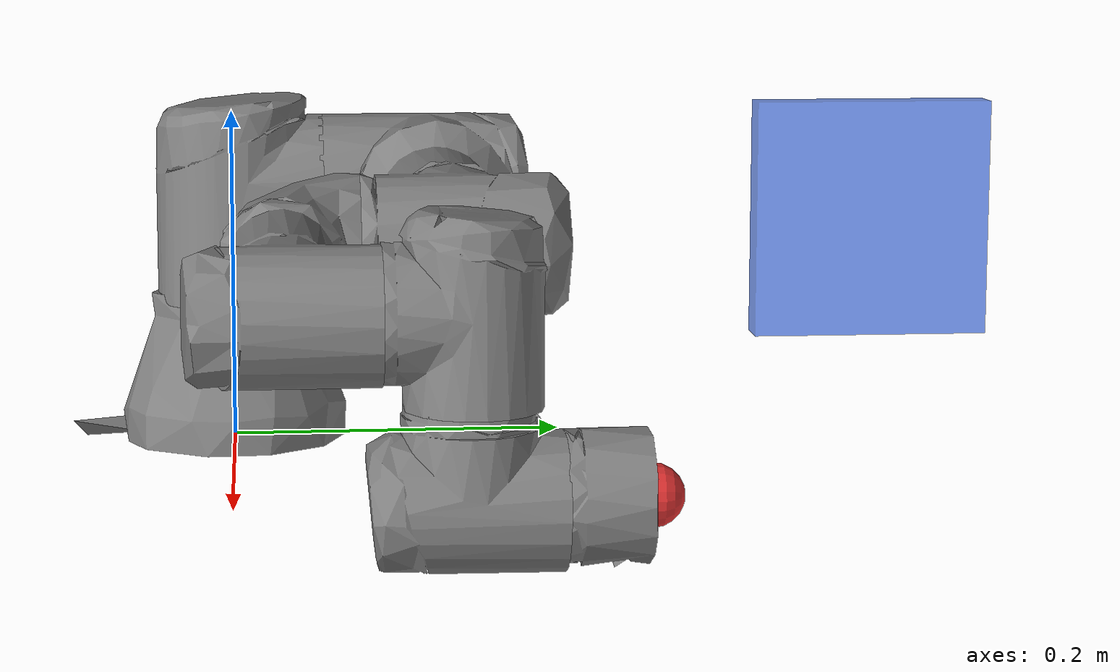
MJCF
<?xml version='1.0' encoding='utf-8'?>
<mujoco model="ur3">
  <compiler angle="radian" />

  <asset>
    <mesh name="base" content_type="model/stl" file="/home/ubuntu/ur3_ft300_ws/src/ur_description/meshes/ur3/collision/base.stl" />
    <mesh name="shoulder" content_type="model/stl" file="/home/ubuntu/ur3_ft300_ws/src/ur_description/meshes/ur3/collision/shoulder.stl" />
    <mesh name="upperarm" content_type="model/stl" file="/home/ubuntu/ur3_ft300_ws/src/ur_description/meshes/ur3/collision/upperarm.stl" />
    <mesh name="forearm" content_type="model/stl" file="/home/ubuntu/ur3_ft300_ws/src/ur_description/meshes/ur3/collision/forearm.stl" />
    <mesh name="wrist1" content_type="model/stl" file="/home/ubuntu/ur3_ft300_ws/src/ur_description/meshes/ur3/collision/wrist1.stl" />
    <mesh name="wrist2" content_type="model/stl" file="/home/ubuntu/ur3_ft300_ws/src/ur_description/meshes/ur3/collision/wrist2.stl" />
    <mesh name="wrist3" content_type="model/stl" file="/home/ubuntu/ur3_ft300_ws/src/ur_description/meshes/ur3/collision/wrist3.stl" />
  </asset>

  <contact>
    <exclude body1="world" body2="shoulder_link" />
  </contact>

  <worldbody>
    <geom quat="-1 0 0 0" type="mesh" mesh="base" />
    <body name="shoulder_link" pos="0 0 0.1519" quat="0 0 0 1">
      <inertial pos="0 0 -0.02" mass="2" diaginertia="0.00809317 0.00809317 0.005625" />
      <joint name="shoulder_pan_joint" limited="true" range="-6.28319 6.28319" actuatorfrcrange="-56 56" />
      <geom quat="0 0 0 1" type="mesh" mesh="shoulder" />
      <body name="upper_arm_link" quat="0.707107 0.707107 0 0">
        <inertial pos="-0.11365 0 0.1157" mass="3.42" diaginertia="0.0217285 0.0217285 0.00961875" />
        <joint name="shoulder_lift_joint" limited="true" range="-6.28319 6.28319" actuatorfrcrange="-56 56" />
        <geom pos="0 0 0.1198" quat="0.5 0.5 -0.5 -0.5" type="mesh" mesh="upperarm" />
        <body name="forearm_link" pos="-0.24365 0 0">
          <inertial pos="-0.16325 0 0.0238" mass="1.26" diaginertia="0.00654681 0.00654681 0.00354375" />
          <joint name="elbow_joint" limited="true" range="-3.14159 3.14159" actuatorfrcrange="-28 28" />
          <geom pos="0 0 0.0275" quat="0.5 0.5 -0.5 -0.5" type="mesh" mesh="forearm" />
          <body name="wrist_1_link" pos="-0.21325 0 0.11235">
            <inertial pos="0 -0.01 0" quat="0.5 0.5 -0.5 0.5" mass="0.8" diaginertia="0.00225 0.00161064 0.00161064" />
            <joint name="wrist_1_joint" limited="true" range="-6.28319 6.28319" actuatorfrcrange="-12 12" />
            <geom pos="0 0 -0.085" quat="0.707107 0.707107 0 0" type="mesh" mesh="wrist1" />
            <body name="wrist_2_link" pos="0 -0.08535 -1.75056e-11" quat="0.707107 0.707107 0 0">
              <inertial pos="0 0.01 0" quat="0.5 0.5 -0.5 0.5" mass="0.8" diaginertia="0.00225 0.00157217 0.00157217" />
              <joint name="wrist_2_joint" limited="true" range="-6.28319 6.28319" actuatorfrcrange="-12 12" />
              <geom pos="0 0 -0.083" quat="1 0 0 0" type="mesh" mesh="wrist2" />
              <body name="wrist_3_link" pos="0 0.0819 -1.6798e-11" quat="0.707107 -0.707107 0 0">
                <inertial pos="0 0 -0.02" quat="0.5 0.5 -0.5 0.5" mass="0.35" diaginertia="0.0001792 0.000136267 0.000136267" />
                <joint name="wrist_3_joint" limited="true" range="-6.28319 6.28319" actuatorfrcrange="-12 12" />
                <geom pos="0 -0.002 -0.082" quat="0.707107 0.707107 0 0" type="mesh" mesh="wrist3" />
              <body name="ft300_body" pos="2.7601846349223835e-12 -4.679934217932666e-11 2.7602955484787293e-12" quat="0.9999999999999998 4.247824137431119e-11 -9.977749762804577e-17 -1.4502980385028285e-10"><site name="ft300_site" pos="0 0 0" size="0.008" rgba="0.1 1.0 0.1 1" /><geom name="tcp_probe" type="sphere" pos="0 0 0" size="0.015" mass="0" contype="2" conaffinity="4" condim="3" friction="0.8 0.005 0.0001" rgba="0.9 0.2 0.2 1" /></body></body>
            </body>
          </body>
        </body>
      </body>
    </body>
  <geom name="contact_wall" type="box" pos="0.2904633246167368 0.32965973795499237 0.17093208960207715" size="0.010 0.060 0.060" contype="4" conaffinity="2" condim="3" friction="0.8 0.005 0.0001" rgba="0.2 0.4 0.9 0.7" /></worldbody>
  <actuator>

    <motor name="shoulder_pan_motor" joint="shoulder_pan_joint" gear="1" />

    <motor name="shoulder_lift_motor" joint="shoulder_lift_joint" gear="1" />

    <motor name="elbow_motor" joint="elbow_joint" gear="1" />

    <motor name="wrist1_motor" joint="wrist_1_joint" gear="1" />

    <motor name="wrist2_motor" joint="wrist_2_joint" gear="1" />

    <motor name="wrist3_motor" joint="wrist_3_joint" gear="1" />

</actuator>
<sensor><force name="ft300_force" site="ft300_site" /><torque name="ft300_torque" site="ft300_site" /></sensor></mujoco>
